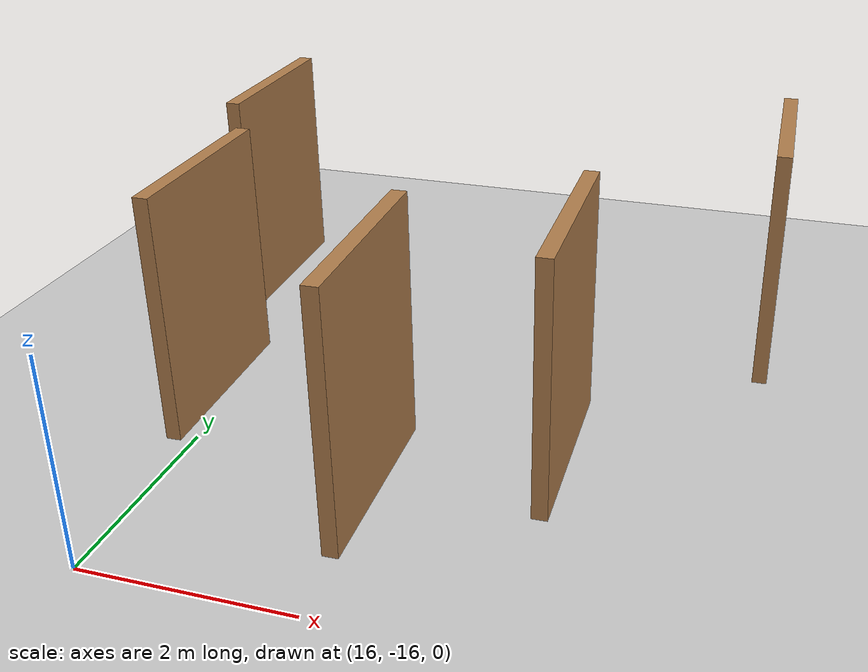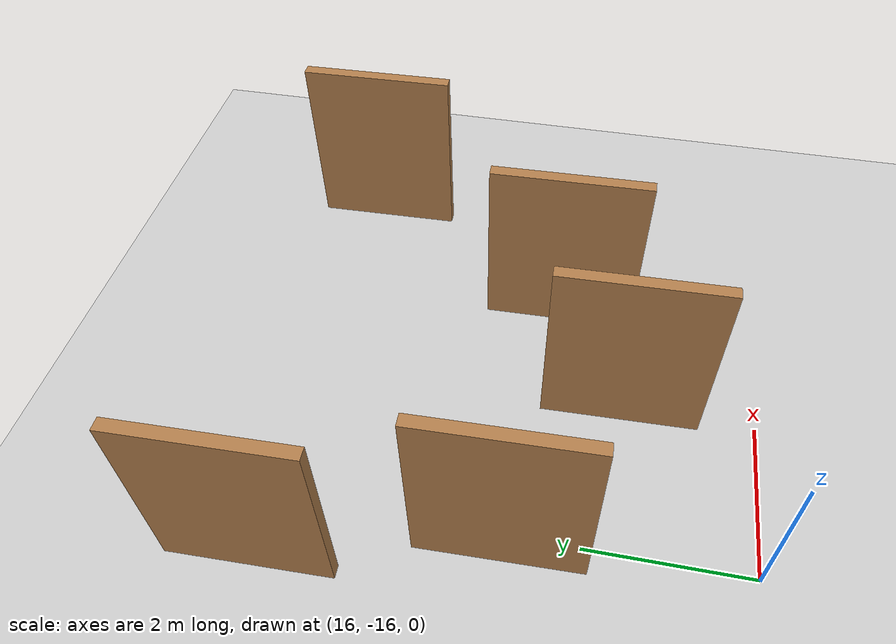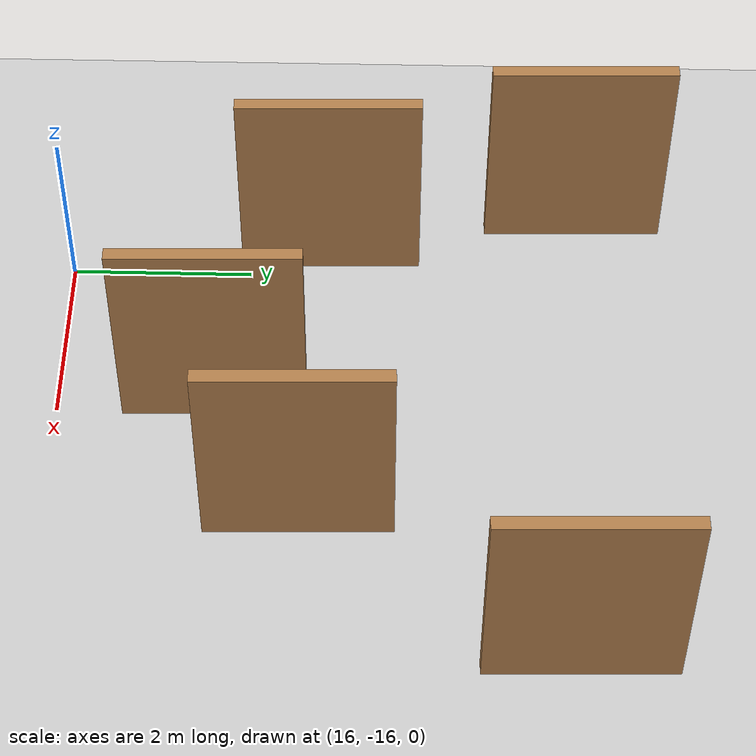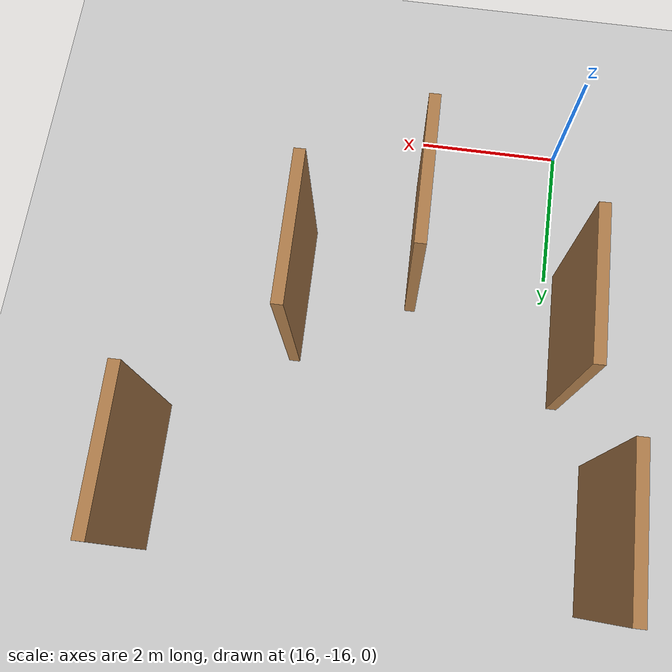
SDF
<sdf version="1.6">
 <world name="default">
  <model name="ground_plane">
   <static>1</static>
   <link name="link">
    <collision name="collision">
     <geometry><plane><normal>0 0 1</normal><size>100 100</size></plane></geometry>
     <surface><friction><ode><mu>100</mu><mu2>50</mu2></ode></friction></surface>
    </collision>
    <visual name="visual">
     <cast_shadows>0</cast_shadows>
     <geometry><plane><normal>0 0 1</normal><size>100 100</size></plane></geometry>
     <material>
      <script><uri>file://media/materials/scripts/gazebo.material</uri><name>Gazebo/Grey</name></script>
     </material>
    </visual>
   </link>
  </model>
  <model name="tr_maze_lay_1_clone_2">
   <pose>15.7742 -13.0962 0 0 0 -1.549</pose>
   <link name="Wall_21">
    <collision name="Wall_21_Collision">
     <geometry><box><size>2 0.15 2.5</size></box></geometry>
     <pose>0 0 1.25 0 -0 0</pose>
    </collision>
    <visual name="Wall_21_Visual">
     <pose>0 0 1.25 0 -0 0</pose>
     <geometry><box><size>2 0.15 2.5</size></box></geometry>
     <material>
      <script><uri>file://media/materials/scripts/gazebo.material</uri><name>Gazebo/Wood</name></script>
      <ambient>1 1 1 1</ambient>
     </material>
    </visual>
    <pose>0 0 0 0 -0 3.14159</pose>
   </link>
   <static>1</static>
  </model>
  <model name="tr_maze_lay_1_clone_3">
   <pose>17.928 -14.2839 0 0 0 -1.549</pose>
   <link name="Wall_21">
    <collision name="Wall_21_Collision">
     <geometry><box><size>2 0.15 2.5</size></box></geometry>
     <pose>0 0 1.25 0 -0 0</pose>
    </collision>
    <visual name="Wall_21_Visual">
     <pose>0 0 1.25 0 -0 0</pose>
     <geometry><box><size>2 0.15 2.5</size></box></geometry>
     <material>
      <script><uri>file://media/materials/scripts/gazebo.material</uri><name>Gazebo/Wood</name></script>
      <ambient>1 1 1 1</ambient>
     </material>
    </visual>
    <pose>0 0 0 0 -0 3.14159</pose>
   </link>
   <static>1</static>
  </model>
  <model name="tr_maze_lay_1_clone_4">
   <pose>19.4695 -13.321 0 0 0 -1.549</pose>
   <link name="Wall_21">
    <collision name="Wall_21_Collision">
     <geometry><box><size>2 0.15 2.5</size></box></geometry>
     <pose>0 0 1.25 0 -0 0</pose>
    </collision>
    <visual name="Wall_21_Visual">
     <pose>0 0 1.25 0 -0 0</pose>
     <geometry><box><size>2 0.15 2.5</size></box></geometry>
     <material>
      <script><uri>file://media/materials/scripts/gazebo.material</uri><name>Gazebo/Wood</name></script>
      <ambient>1 1 1 1</ambient>
     </material>
    </visual>
    <pose>0 0 0 0 -0 3.14159</pose>
   </link>
   <static>1</static>
  </model>
  <model name="tr_maze_lay_1_clone_9_clone_7">
   <pose>15.2155 -10.3467 0 0 0 -1.549</pose>
   <link name="Wall_21">
    <collision name="Wall_21_Collision">
     <geometry><box><size>2 0.15 2.5</size></box></geometry>
     <pose>0 0 1.25 0 -0 0</pose>
    </collision>
    <visual name="Wall_21_Visual">
     <pose>0 0 1.25 0 -0 0</pose>
     <geometry><box><size>2 0.15 2.5</size></box></geometry>
     <material>
      <script><uri>file://media/materials/scripts/gazebo.material</uri><name>Gazebo/Wood</name></script>
      <ambient>1 1 1 1</ambient>
     </material>
    </visual>
    <pose>0 0 0 0 -0 3.14159</pose>
   </link>
   <static>1</static>
  </model>
  <model name="tr_maze_lay_1_clone_5_clone_13">
   <pose>21.1219 -10.4464 0 0 0 -1.549</pose>
   <link name="Wall_21">
    <collision name="Wall_21_Collision">
     <geometry><box><size>2 0.15 2.5</size></box></geometry>
     <pose>0 0 1.25 0 -0 0</pose>
    </collision>
    <visual name="Wall_21_Visual">
     <pose>0 0 1.25 0 -0 0</pose>
     <geometry><box><size>2 0.15 2.5</size></box></geometry>
     <material>
      <script><uri>file://media/materials/scripts/gazebo.material</uri><name>Gazebo/Wood</name></script>
      <ambient>1 1 1 1</ambient>
     </material>
    </visual>
    <pose>0 0 0 0 -0 3.14159</pose>
   </link>
   <static>1</static>
  </model>
 </world>
</sdf>
